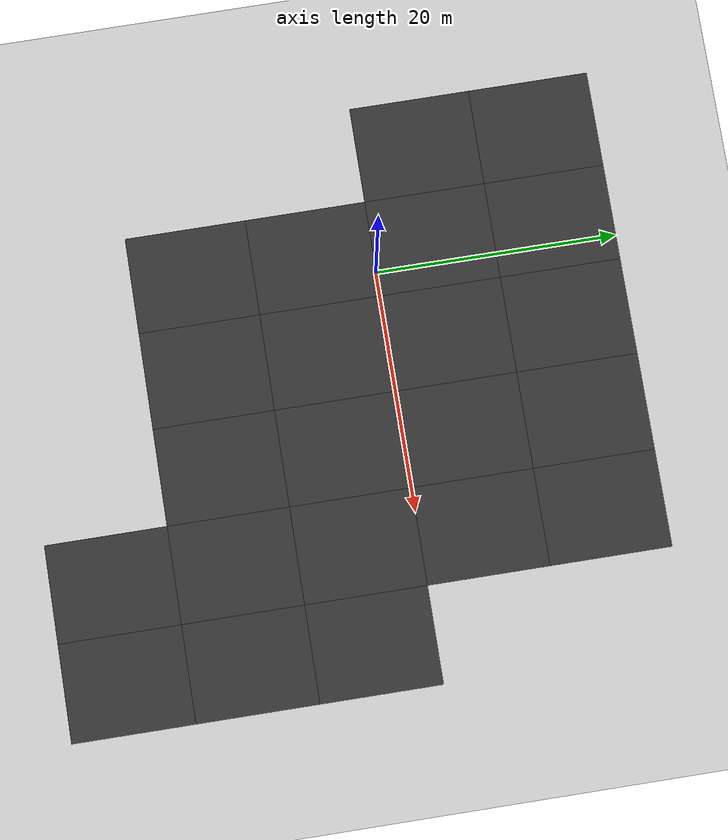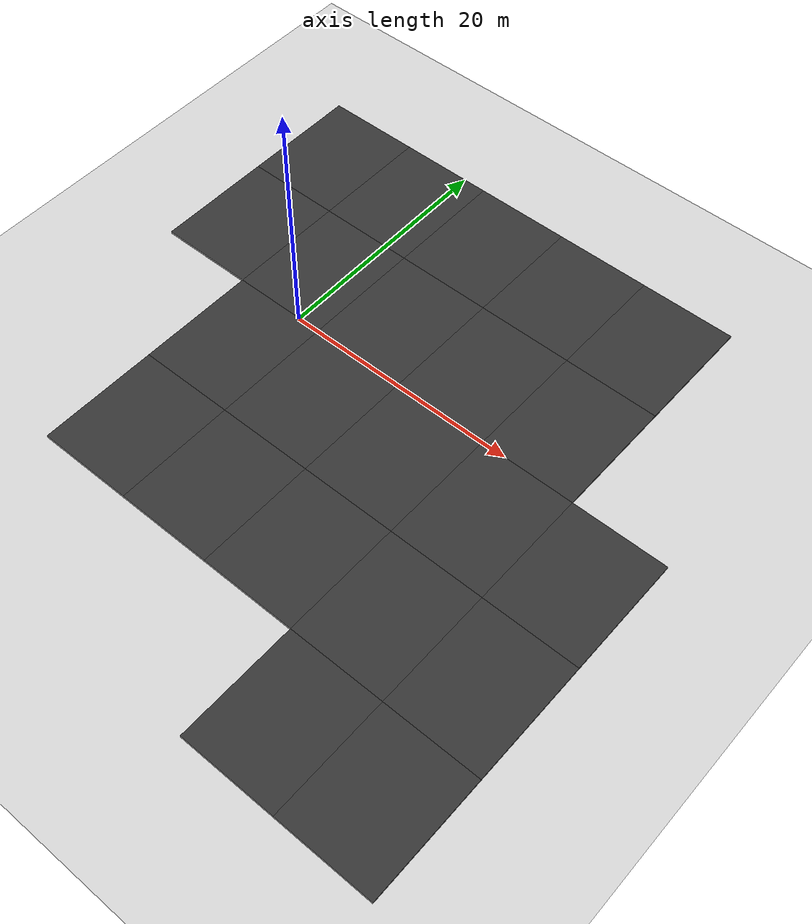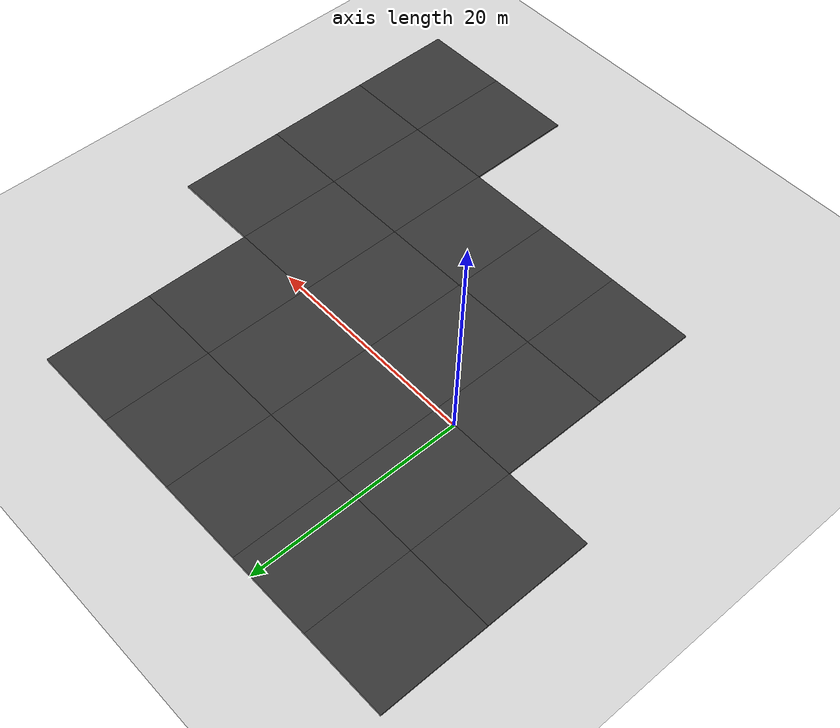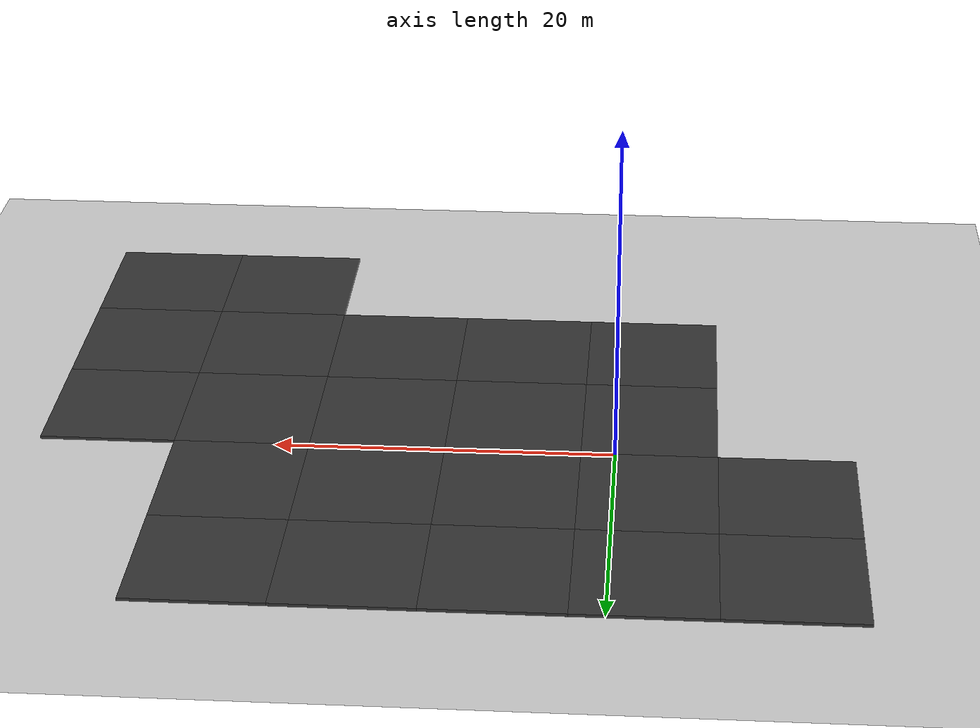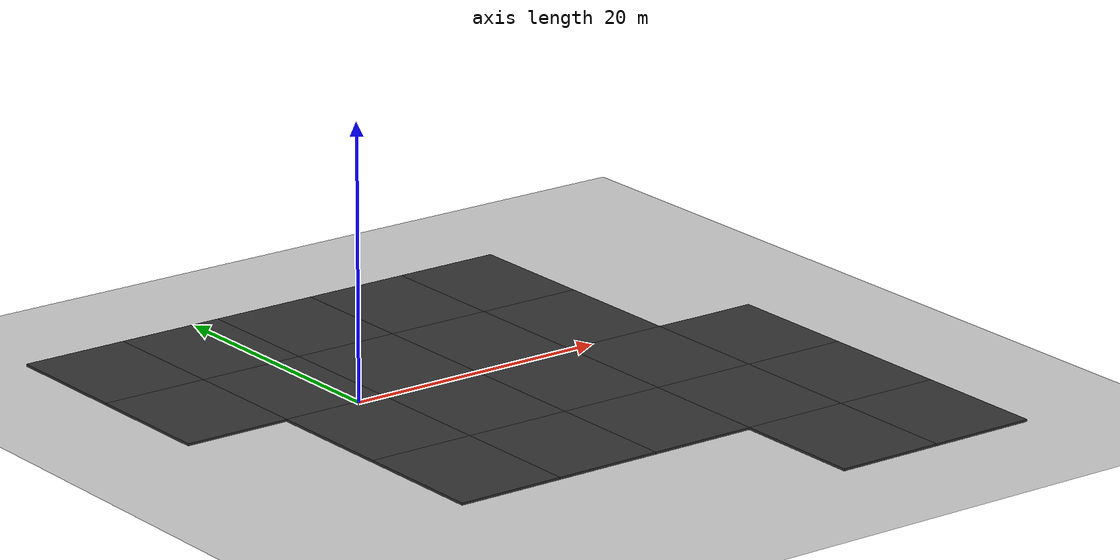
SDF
<sdf version="1.7">
 <world name="default">
  <model name="ground_plane">
   <static>1</static>
   <link name="link">
    <collision name="collision">
     <geometry><plane><normal>0 0 1</normal><size>100 100</size></plane></geometry>
     <surface>
      <contact><collide_bitmask>65535</collide_bitmask></contact>
      <friction><ode><mu>100</mu><mu2>50</mu2></ode></friction>
     </surface>
    </collision>
    <visual name="visual">
     <cast_shadows>0</cast_shadows>
     <geometry><plane><normal>0 0 1</normal><size>100 100</size></plane></geometry>
     <material>
      <script><uri>file://media/materials/scripts/gazebo.material</uri><name>Gazebo/Grey</name></script>
     </material>
    </visual>
   </link>
  </model>
  <model name="mud_box_11">
   <link name="link">
    <inertial>
     <mass>1</mass>
     <inertia><ixx>1</ixx><ixy>0</ixy><ixz>0</ixz><iyy>1</iyy><iyz>0</iyz><izz>1</izz></inertia>
    </inertial>
    <visual name="visual">
     <cast_shadows>0</cast_shadows>
     <geometry><box><size>8 10 0.2</size></box></geometry>
     <material>
      <script>
       <uri>model://mud_box/materials/scripts</uri>
       <uri>model://mud_box/materials/textures</uri>
       <name>vrc/mud</name>
      </script>
      <shader type="pixel"><normal_map>__default__</normal_map></shader>
      <ambient>0.2 0.2 0.2 1</ambient>
      <diffuse>0.2 0.2 0.2 1</diffuse>
      <specular>0.2 0.2 0.2 1</specular>
      <emissive>0 0 0 1</emissive>
     </material>
    </visual>
    <collision name="collision">
     <geometry><box><size>8 10 0.2</size></box></geometry>
     <surface>
      <friction>
       <ode><mu>1</mu><mu2>1</mu2><fdir1>0 0 0</fdir1><slip1>0</slip1><slip2>0</slip2></ode>
       <torsional>
        <coefficient>1</coefficient>
        <patch_radius>0</patch_radius>
        <surface_radius>0</surface_radius>
        <use_patch_radius>1</use_patch_radius>
        <ode><slip>0</slip></ode>
       </torsional>
      </friction>
      <bounce><restitution_coefficient>0</restitution_coefficient><threshold>1e+06</threshold></bounce>
      <contact>
       <collide_without_contact>0</collide_without_contact>
       <collide_without_contact_bitmask>1</collide_without_contact_bitmask>
       <collide_bitmask>1</collide_bitmask>
       <ode>
        <soft_cfm>0</soft_cfm>
        <soft_erp>0.2</soft_erp>
        <kp>1e+13</kp>
        <kd>1</kd>
        <max_vel>0.01</max_vel>
        <min_depth>0</min_depth>
       </ode>
       <bullet>
        <split_impulse>1</split_impulse>
        <split_impulse_penetration_threshold>-0.01</split_impulse_penetration_threshold>
        <soft_cfm>0</soft_cfm>
        <soft_erp>0.2</soft_erp>
        <kp>1e+13</kp>
        <kd>1</kd>
       </bullet>
      </contact>
     </surface>
    </collision>
   </link>
   <static>1</static>
   <pose>30 -25 0 0 -0 0</pose>
  </model>
  <model name="mud_box_12">
   <link name="link">
    <inertial>
     <mass>1</mass>
     <inertia><ixx>1</ixx><ixy>0</ixy><ixz>0</ixz><iyy>1</iyy><iyz>0</iyz><izz>1</izz></inertia>
    </inertial>
    <visual name="visual">
     <cast_shadows>0</cast_shadows>
     <geometry><box><size>8 10 0.2</size></box></geometry>
     <material>
      <script>
       <uri>model://mud_box/materials/scripts</uri>
       <uri>model://mud_box/materials/textures</uri>
       <name>vrc/mud</name>
      </script>
      <shader type="pixel"><normal_map>__default__</normal_map></shader>
      <ambient>0.2 0.2 0.2 1</ambient>
      <diffuse>0.2 0.2 0.2 1</diffuse>
      <specular>0.2 0.2 0.2 1</specular>
      <emissive>0 0 0 1</emissive>
     </material>
    </visual>
    <collision name="collision">
     <geometry><box><size>8 10 0.2</size></box></geometry>
     <surface>
      <friction>
       <ode><mu>1</mu><mu2>1</mu2><fdir1>0 0 0</fdir1><slip1>0</slip1><slip2>0</slip2></ode>
       <torsional>
        <coefficient>1</coefficient>
        <patch_radius>0</patch_radius>
        <surface_radius>0</surface_radius>
        <use_patch_radius>1</use_patch_radius>
        <ode><slip>0</slip></ode>
       </torsional>
      </friction>
      <bounce><restitution_coefficient>0</restitution_coefficient><threshold>1e+06</threshold></bounce>
      <contact>
       <collide_without_contact>0</collide_without_contact>
       <collide_without_contact_bitmask>1</collide_without_contact_bitmask>
       <collide_bitmask>1</collide_bitmask>
       <ode>
        <soft_cfm>0</soft_cfm>
        <soft_erp>0.2</soft_erp>
        <kp>1e+13</kp>
        <kd>1</kd>
        <max_vel>0.01</max_vel>
        <min_depth>0</min_depth>
       </ode>
       <bullet>
        <split_impulse>1</split_impulse>
        <split_impulse_penetration_threshold>-0.01</split_impulse_penetration_threshold>
        <soft_cfm>0</soft_cfm>
        <soft_erp>0.2</soft_erp>
        <kp>1e+13</kp>
        <kd>1</kd>
       </bullet>
      </contact>
     </surface>
    </collision>
   </link>
   <static>1</static>
   <pose>30 -15 0 0 -0 0</pose>
  </model>
  <model name="mud_box_13">
   <link name="link">
    <inertial>
     <mass>1</mass>
     <inertia><ixx>1</ixx><ixy>0</ixy><ixz>0</ixz><iyy>1</iyy><iyz>0</iyz><izz>1</izz></inertia>
    </inertial>
    <visual name="visual">
     <cast_shadows>0</cast_shadows>
     <geometry><box><size>8 10 0.2</size></box></geometry>
     <material>
      <script>
       <uri>model://mud_box/materials/scripts</uri>
       <uri>model://mud_box/materials/textures</uri>
       <name>vrc/mud</name>
      </script>
      <shader type="pixel"><normal_map>__default__</normal_map></shader>
      <ambient>0.2 0.2 0.2 1</ambient>
      <diffuse>0.2 0.2 0.2 1</diffuse>
      <specular>0.2 0.2 0.2 1</specular>
      <emissive>0 0 0 1</emissive>
     </material>
    </visual>
    <collision name="collision">
     <geometry><box><size>8 10 0.2</size></box></geometry>
     <surface>
      <friction>
       <ode><mu>1</mu><mu2>1</mu2><fdir1>0 0 0</fdir1><slip1>0</slip1><slip2>0</slip2></ode>
       <torsional>
        <coefficient>1</coefficient>
        <patch_radius>0</patch_radius>
        <surface_radius>0</surface_radius>
        <use_patch_radius>1</use_patch_radius>
        <ode><slip>0</slip></ode>
       </torsional>
      </friction>
      <bounce><restitution_coefficient>0</restitution_coefficient><threshold>1e+06</threshold></bounce>
      <contact>
       <collide_without_contact>0</collide_without_contact>
       <collide_without_contact_bitmask>1</collide_without_contact_bitmask>
       <collide_bitmask>1</collide_bitmask>
       <ode>
        <soft_cfm>0</soft_cfm>
        <soft_erp>0.2</soft_erp>
        <kp>1e+13</kp>
        <kd>1</kd>
        <max_vel>0.01</max_vel>
        <min_depth>0</min_depth>
       </ode>
       <bullet>
        <split_impulse>1</split_impulse>
        <split_impulse_penetration_threshold>-0.01</split_impulse_penetration_threshold>
        <soft_cfm>0</soft_cfm>
        <soft_erp>0.2</soft_erp>
        <kp>1e+13</kp>
        <kd>1</kd>
       </bullet>
      </contact>
     </surface>
    </collision>
   </link>
   <static>1</static>
   <pose>30 -5 0 0 -0 0</pose>
  </model>
  <model name="mud_box_14">
   <link name="link">
    <inertial>
     <mass>1</mass>
     <inertia><ixx>1</ixx><ixy>0</ixy><ixz>0</ixz><iyy>1</iyy><iyz>0</iyz><izz>1</izz></inertia>
    </inertial>
    <visual name="visual">
     <cast_shadows>0</cast_shadows>
     <geometry><box><size>8 10 0.2</size></box></geometry>
     <material>
      <script>
       <uri>model://mud_box/materials/scripts</uri>
       <uri>model://mud_box/materials/textures</uri>
       <name>vrc/mud</name>
      </script>
      <shader type="pixel"><normal_map>__default__</normal_map></shader>
      <ambient>0.2 0.2 0.2 1</ambient>
      <diffuse>0.2 0.2 0.2 1</diffuse>
      <specular>0.2 0.2 0.2 1</specular>
      <emissive>0 0 0 1</emissive>
     </material>
    </visual>
    <collision name="collision">
     <geometry><box><size>8 10 0.2</size></box></geometry>
     <surface>
      <friction>
       <ode><mu>1</mu><mu2>1</mu2><fdir1>0 0 0</fdir1><slip1>0</slip1><slip2>0</slip2></ode>
       <torsional>
        <coefficient>1</coefficient>
        <patch_radius>0</patch_radius>
        <surface_radius>0</surface_radius>
        <use_patch_radius>1</use_patch_radius>
        <ode><slip>0</slip></ode>
       </torsional>
      </friction>
      <bounce><restitution_coefficient>0</restitution_coefficient><threshold>1e+06</threshold></bounce>
      <contact>
       <collide_without_contact>0</collide_without_contact>
       <collide_without_contact_bitmask>1</collide_without_contact_bitmask>
       <collide_bitmask>1</collide_bitmask>
       <ode>
        <soft_cfm>0</soft_cfm>
        <soft_erp>0.2</soft_erp>
        <kp>1e+13</kp>
        <kd>1</kd>
        <max_vel>0.01</max_vel>
        <min_depth>0</min_depth>
       </ode>
       <bullet>
        <split_impulse>1</split_impulse>
        <split_impulse_penetration_threshold>-0.01</split_impulse_penetration_threshold>
        <soft_cfm>0</soft_cfm>
        <soft_erp>0.2</soft_erp>
        <kp>1e+13</kp>
        <kd>1</kd>
       </bullet>
      </contact>
     </surface>
    </collision>
   </link>
   <static>1</static>
   <pose>22 -5 0 0 -0 0</pose>
  </model>
  <model name="mud_box_15">
   <link name="link">
    <inertial>
     <mass>1</mass>
     <inertia><ixx>1</ixx><ixy>0</ixy><ixz>0</ixz><iyy>1</iyy><iyz>0</iyz><izz>1</izz></inertia>
    </inertial>
    <visual name="visual">
     <cast_shadows>0</cast_shadows>
     <geometry><box><size>8 10 0.2</size></box></geometry>
     <material>
      <script>
       <uri>model://mud_box/materials/scripts</uri>
       <uri>model://mud_box/materials/textures</uri>
       <name>vrc/mud</name>
      </script>
      <shader type="pixel"><normal_map>__default__</normal_map></shader>
      <ambient>0.2 0.2 0.2 1</ambient>
      <diffuse>0.2 0.2 0.2 1</diffuse>
      <specular>0.2 0.2 0.2 1</specular>
      <emissive>0 0 0 1</emissive>
     </material>
    </visual>
    <collision name="collision">
     <geometry><box><size>8 10 0.2</size></box></geometry>
     <surface>
      <friction>
       <ode><mu>1</mu><mu2>1</mu2><fdir1>0 0 0</fdir1><slip1>0</slip1><slip2>0</slip2></ode>
       <torsional>
        <coefficient>1</coefficient>
        <patch_radius>0</patch_radius>
        <surface_radius>0</surface_radius>
        <use_patch_radius>1</use_patch_radius>
        <ode><slip>0</slip></ode>
       </torsional>
      </friction>
      <bounce><restitution_coefficient>0</restitution_coefficient><threshold>1e+06</threshold></bounce>
      <contact>
       <collide_without_contact>0</collide_without_contact>
       <collide_without_contact_bitmask>1</collide_without_contact_bitmask>
       <collide_bitmask>1</collide_bitmask>
       <ode>
        <soft_cfm>0</soft_cfm>
        <soft_erp>0.2</soft_erp>
        <kp>1e+13</kp>
        <kd>1</kd>
        <max_vel>0.01</max_vel>
        <min_depth>0</min_depth>
       </ode>
       <bullet>
        <split_impulse>1</split_impulse>
        <split_impulse_penetration_threshold>-0.01</split_impulse_penetration_threshold>
        <soft_cfm>0</soft_cfm>
        <soft_erp>0.2</soft_erp>
        <kp>1e+13</kp>
        <kd>1</kd>
       </bullet>
      </contact>
     </surface>
    </collision>
   </link>
   <static>1</static>
   <pose>22 -15 0 0 -0 0</pose>
  </model>
  <model name="mud_box_16">
   <link name="link">
    <inertial>
     <mass>1</mass>
     <inertia><ixx>1</ixx><ixy>0</ixy><ixz>0</ixz><iyy>1</iyy><iyz>0</iyz><izz>1</izz></inertia>
    </inertial>
    <visual name="visual">
     <cast_shadows>0</cast_shadows>
     <geometry><box><size>8 10 0.2</size></box></geometry>
     <material>
      <script>
       <uri>model://mud_box/materials/scripts</uri>
       <uri>model://mud_box/materials/textures</uri>
       <name>vrc/mud</name>
      </script>
      <shader type="pixel"><normal_map>__default__</normal_map></shader>
      <ambient>0.2 0.2 0.2 1</ambient>
      <diffuse>0.2 0.2 0.2 1</diffuse>
      <specular>0.2 0.2 0.2 1</specular>
      <emissive>0 0 0 1</emissive>
     </material>
    </visual>
    <collision name="collision">
     <geometry><box><size>8 10 0.2</size></box></geometry>
     <surface>
      <friction>
       <ode><mu>1</mu><mu2>1</mu2><fdir1>0 0 0</fdir1><slip1>0</slip1><slip2>0</slip2></ode>
       <torsional>
        <coefficient>1</coefficient>
        <patch_radius>0</patch_radius>
        <surface_radius>0</surface_radius>
        <use_patch_radius>1</use_patch_radius>
        <ode><slip>0</slip></ode>
       </torsional>
      </friction>
      <bounce><restitution_coefficient>0</restitution_coefficient><threshold>1e+06</threshold></bounce>
      <contact>
       <collide_without_contact>0</collide_without_contact>
       <collide_without_contact_bitmask>1</collide_without_contact_bitmask>
       <collide_bitmask>1</collide_bitmask>
       <ode>
        <soft_cfm>0</soft_cfm>
        <soft_erp>0.2</soft_erp>
        <kp>1e+13</kp>
        <kd>1</kd>
        <max_vel>0.01</max_vel>
        <min_depth>0</min_depth>
       </ode>
       <bullet>
        <split_impulse>1</split_impulse>
        <split_impulse_penetration_threshold>-0.01</split_impulse_penetration_threshold>
        <soft_cfm>0</soft_cfm>
        <soft_erp>0.2</soft_erp>
        <kp>1e+13</kp>
        <kd>1</kd>
       </bullet>
      </contact>
     </surface>
    </collision>
   </link>
   <static>1</static>
   <pose>22 -25 0 0 -0 0</pose>
  </model>
  <model name="mud_box_22">
   <link name="link">
    <inertial>
     <mass>1</mass>
     <inertia><ixx>1</ixx><ixy>0</ixy><ixz>0</ixz><iyy>1</iyy><iyz>0</iyz><izz>1</izz></inertia>
    </inertial>
    <visual name="visual">
     <cast_shadows>0</cast_shadows>
     <geometry><box><size>8 10 0.2</size></box></geometry>
     <material>
      <script>
       <uri>model://mud_box/materials/scripts</uri>
       <uri>model://mud_box/materials/textures</uri>
       <name>vrc/mud</name>
      </script>
      <shader type="pixel"><normal_map>__default__</normal_map></shader>
      <ambient>0.2 0.2 0.2 1</ambient>
      <diffuse>0.2 0.2 0.2 1</diffuse>
      <specular>0.2 0.2 0.2 1</specular>
      <emissive>0 0 0 1</emissive>
     </material>
    </visual>
    <collision name="collision">
     <geometry><box><size>8 10 0.2</size></box></geometry>
     <surface>
      <friction>
       <ode><mu>1</mu><mu2>1</mu2><fdir1>0 0 0</fdir1><slip1>0</slip1><slip2>0</slip2></ode>
       <torsional>
        <coefficient>1</coefficient>
        <patch_radius>0</patch_radius>
        <surface_radius>0</surface_radius>
        <use_patch_radius>1</use_patch_radius>
        <ode><slip>0</slip></ode>
       </torsional>
      </friction>
      <bounce><restitution_coefficient>0</restitution_coefficient><threshold>1e+06</threshold></bounce>
      <contact>
       <collide_without_contact>0</collide_without_contact>
       <collide_without_contact_bitmask>1</collide_without_contact_bitmask>
       <collide_bitmask>1</collide_bitmask>
       <ode>
        <soft_cfm>0</soft_cfm>
        <soft_erp>0.2</soft_erp>
        <kp>1e+13</kp>
        <kd>1</kd>
        <max_vel>0.01</max_vel>
        <min_depth>0</min_depth>
       </ode>
       <bullet>
        <split_impulse>1</split_impulse>
        <split_impulse_penetration_threshold>-0.01</split_impulse_penetration_threshold>
        <soft_cfm>0</soft_cfm>
        <soft_erp>0.2</soft_erp>
        <kp>1e+13</kp>
        <kd>1</kd>
       </bullet>
      </contact>
     </surface>
    </collision>
   </link>
   <static>1</static>
   <pose>14 -15 0 0 -0 0</pose>
  </model>
  <model name="mud_box_23">
   <link name="link">
    <inertial>
     <mass>1</mass>
     <inertia><ixx>1</ixx><ixy>0</ixy><ixz>0</ixz><iyy>1</iyy><iyz>0</iyz><izz>1</izz></inertia>
    </inertial>
    <visual name="visual">
     <cast_shadows>0</cast_shadows>
     <geometry><box><size>8 10 0.2</size></box></geometry>
     <material>
      <script>
       <uri>model://mud_box/materials/scripts</uri>
       <uri>model://mud_box/materials/textures</uri>
       <name>vrc/mud</name>
      </script>
      <shader type="pixel"><normal_map>__default__</normal_map></shader>
      <ambient>0.2 0.2 0.2 1</ambient>
      <diffuse>0.2 0.2 0.2 1</diffuse>
      <specular>0.2 0.2 0.2 1</specular>
      <emissive>0 0 0 1</emissive>
     </material>
    </visual>
    <collision name="collision">
     <geometry><box><size>8 10 0.2</size></box></geometry>
     <surface>
      <friction>
       <ode><mu>1</mu><mu2>1</mu2><fdir1>0 0 0</fdir1><slip1>0</slip1><slip2>0</slip2></ode>
       <torsional>
        <coefficient>1</coefficient>
        <patch_radius>0</patch_radius>
        <surface_radius>0</surface_radius>
        <use_patch_radius>1</use_patch_radius>
        <ode><slip>0</slip></ode>
       </torsional>
      </friction>
      <bounce><restitution_coefficient>0</restitution_coefficient><threshold>1e+06</threshold></bounce>
      <contact>
       <collide_without_contact>0</collide_without_contact>
       <collide_without_contact_bitmask>1</collide_without_contact_bitmask>
       <collide_bitmask>1</collide_bitmask>
       <ode>
        <soft_cfm>0</soft_cfm>
        <soft_erp>0.2</soft_erp>
        <kp>1e+13</kp>
        <kd>1</kd>
        <max_vel>0.01</max_vel>
        <min_depth>0</min_depth>
       </ode>
       <bullet>
        <split_impulse>1</split_impulse>
        <split_impulse_penetration_threshold>-0.01</split_impulse_penetration_threshold>
        <soft_cfm>0</soft_cfm>
        <soft_erp>0.2</soft_erp>
        <kp>1e+13</kp>
        <kd>1</kd>
       </bullet>
      </contact>
     </surface>
    </collision>
   </link>
   <static>1</static>
   <pose>14 -5 0 0 -0 0</pose>
  </model>
  <model name="mud_box_24">
   <link name="link">
    <inertial>
     <mass>1</mass>
     <inertia><ixx>1</ixx><ixy>0</ixy><ixz>0</ixz><iyy>1</iyy><iyz>0</iyz><izz>1</izz></inertia>
    </inertial>
    <visual name="visual">
     <cast_shadows>0</cast_shadows>
     <geometry><box><size>8 10 0.2</size></box></geometry>
     <material>
      <script>
       <uri>model://mud_box/materials/scripts</uri>
       <uri>model://mud_box/materials/textures</uri>
       <name>vrc/mud</name>
      </script>
      <shader type="pixel"><normal_map>__default__</normal_map></shader>
      <ambient>0.2 0.2 0.2 1</ambient>
      <diffuse>0.2 0.2 0.2 1</diffuse>
      <specular>0.2 0.2 0.2 1</specular>
      <emissive>0 0 0 1</emissive>
     </material>
    </visual>
    <collision name="collision">
     <geometry><box><size>8 10 0.2</size></box></geometry>
     <surface>
      <friction>
       <ode><mu>1</mu><mu2>1</mu2><fdir1>0 0 0</fdir1><slip1>0</slip1><slip2>0</slip2></ode>
       <torsional>
        <coefficient>1</coefficient>
        <patch_radius>0</patch_radius>
        <surface_radius>0</surface_radius>
        <use_patch_radius>1</use_patch_radius>
        <ode><slip>0</slip></ode>
       </torsional>
      </friction>
      <bounce><restitution_coefficient>0</restitution_coefficient><threshold>1e+06</threshold></bounce>
      <contact>
       <collide_without_contact>0</collide_without_contact>
       <collide_without_contact_bitmask>1</collide_without_contact_bitmask>
       <collide_bitmask>1</collide_bitmask>
       <ode>
        <soft_cfm>0</soft_cfm>
        <soft_erp>0.2</soft_erp>
        <kp>1e+13</kp>
        <kd>1</kd>
        <max_vel>0.01</max_vel>
        <min_depth>0</min_depth>
       </ode>
       <bullet>
        <split_impulse>1</split_impulse>
        <split_impulse_penetration_threshold>-0.01</split_impulse_penetration_threshold>
        <soft_cfm>0</soft_cfm>
        <soft_erp>0.2</soft_erp>
        <kp>1e+13</kp>
        <kd>1</kd>
       </bullet>
      </contact>
     </surface>
    </collision>
   </link>
   <static>1</static>
   <pose>6 -5 0 0 -0 0</pose>
  </model>
  <model name="mud_box_25">
   <link name="link">
    <inertial>
     <mass>1</mass>
     <inertia><ixx>1</ixx><ixy>0</ixy><ixz>0</ixz><iyy>1</iyy><iyz>0</iyz><izz>1</izz></inertia>
    </inertial>
    <visual name="visual">
     <cast_shadows>0</cast_shadows>
     <geometry><box><size>8 10 0.2</size></box></geometry>
     <material>
      <script>
       <uri>model://mud_box/materials/scripts</uri>
       <uri>model://mud_box/materials/textures</uri>
       <name>vrc/mud</name>
      </script>
      <shader type="pixel"><normal_map>__default__</normal_map></shader>
      <ambient>0.2 0.2 0.2 1</ambient>
      <diffuse>0.2 0.2 0.2 1</diffuse>
      <specular>0.2 0.2 0.2 1</specular>
      <emissive>0 0 0 1</emissive>
     </material>
    </visual>
    <collision name="collision">
     <geometry><box><size>8 10 0.2</size></box></geometry>
     <surface>
      <friction>
       <ode><mu>1</mu><mu2>1</mu2><fdir1>0 0 0</fdir1><slip1>0</slip1><slip2>0</slip2></ode>
       <torsional>
        <coefficient>1</coefficient>
        <patch_radius>0</patch_radius>
        <surface_radius>0</surface_radius>
        <use_patch_radius>1</use_patch_radius>
        <ode><slip>0</slip></ode>
       </torsional>
      </friction>
      <bounce><restitution_coefficient>0</restitution_coefficient><threshold>1e+06</threshold></bounce>
      <contact>
       <collide_without_contact>0</collide_without_contact>
       <collide_without_contact_bitmask>1</collide_without_contact_bitmask>
       <collide_bitmask>1</collide_bitmask>
       <ode>
        <soft_cfm>0</soft_cfm>
        <soft_erp>0.2</soft_erp>
        <kp>1e+13</kp>
        <kd>1</kd>
        <max_vel>0.01</max_vel>
        <min_depth>0</min_depth>
       </ode>
       <bullet>
        <split_impulse>1</split_impulse>
        <split_impulse_penetration_threshold>-0.01</split_impulse_penetration_threshold>
        <soft_cfm>0</soft_cfm>
        <soft_erp>0.2</soft_erp>
        <kp>1e+13</kp>
        <kd>1</kd>
       </bullet>
      </contact>
     </surface>
    </collision>
   </link>
   <static>1</static>
   <pose>6 -15 0 0 -0 0</pose>
  </model>
  <model name="mud_box_32">
   <link name="link">
    <inertial>
     <mass>1</mass>
     <inertia><ixx>1</ixx><ixy>0</ixy><ixz>0</ixz><iyy>1</iyy><iyz>0</iyz><izz>1</izz></inertia>
    </inertial>
    <visual name="visual">
     <cast_shadows>0</cast_shadows>
     <geometry><box><size>8 10 0.2</size></box></geometry>
     <material>
      <script>
       <uri>model://mud_box/materials/scripts</uri>
       <uri>model://mud_box/materials/textures</uri>
       <name>vrc/mud</name>
      </script>
      <shader type="pixel"><normal_map>__default__</normal_map></shader>
      <ambient>0.2 0.2 0.2 1</ambient>
      <diffuse>0.2 0.2 0.2 1</diffuse>
      <specular>0.2 0.2 0.2 1</specular>
      <emissive>0 0 0 1</emissive>
     </material>
    </visual>
    <collision name="collision">
     <geometry><box><size>8 10 0.2</size></box></geometry>
     <surface>
      <friction>
       <ode><mu>1</mu><mu2>1</mu2><fdir1>0 0 0</fdir1><slip1>0</slip1><slip2>0</slip2></ode>
       <torsional>
        <coefficient>1</coefficient>
        <patch_radius>0</patch_radius>
        <surface_radius>0</surface_radius>
        <use_patch_radius>1</use_patch_radius>
        <ode><slip>0</slip></ode>
       </torsional>
      </friction>
      <bounce><restitution_coefficient>0</restitution_coefficient><threshold>1e+06</threshold></bounce>
      <contact>
       <collide_without_contact>0</collide_without_contact>
       <collide_without_contact_bitmask>1</collide_without_contact_bitmask>
       <collide_bitmask>1</collide_bitmask>
       <ode>
        <soft_cfm>0</soft_cfm>
        <soft_erp>0.2</soft_erp>
        <kp>1e+13</kp>
        <kd>1</kd>
        <max_vel>0.01</max_vel>
        <min_depth>0</min_depth>
       </ode>
       <bullet>
        <split_impulse>1</split_impulse>
        <split_impulse_penetration_threshold>-0.01</split_impulse_penetration_threshold>
        <soft_cfm>0</soft_cfm>
        <soft_erp>0.2</soft_erp>
        <kp>1e+13</kp>
        <kd>1</kd>
       </bullet>
      </contact>
     </surface>
    </collision>
   </link>
   <static>1</static>
   <pose>-2 -15 0 0 -0 0</pose>
  </model>
  <model name="mud_box_33">
   <link name="link">
    <inertial>
     <mass>1</mass>
     <inertia><ixx>1</ixx><ixy>0</ixy><ixz>0</ixz><iyy>1</iyy><iyz>0</iyz><izz>1</izz></inertia>
    </inertial>
    <visual name="visual">
     <cast_shadows>0</cast_shadows>
     <geometry><box><size>8 10 0.2</size></box></geometry>
     <material>
      <script>
       <uri>model://mud_box/materials/scripts</uri>
       <uri>model://mud_box/materials/textures</uri>
       <name>vrc/mud</name>
      </script>
      <shader type="pixel"><normal_map>__default__</normal_map></shader>
      <ambient>0.2 0.2 0.2 1</ambient>
      <diffuse>0.2 0.2 0.2 1</diffuse>
      <specular>0.2 0.2 0.2 1</specular>
      <emissive>0 0 0 1</emissive>
     </material>
    </visual>
    <collision name="collision">
     <geometry><box><size>8 10 0.2</size></box></geometry>
     <surface>
      <friction>
       <ode><mu>1</mu><mu2>1</mu2><fdir1>0 0 0</fdir1><slip1>0</slip1><slip2>0</slip2></ode>
       <torsional>
        <coefficient>1</coefficient>
        <patch_radius>0</patch_radius>
        <surface_radius>0</surface_radius>
        <use_patch_radius>1</use_patch_radius>
        <ode><slip>0</slip></ode>
       </torsional>
      </friction>
      <bounce><restitution_coefficient>0</restitution_coefficient><threshold>1e+06</threshold></bounce>
      <contact>
       <collide_without_contact>0</collide_without_contact>
       <collide_without_contact_bitmask>1</collide_without_contact_bitmask>
       <collide_bitmask>1</collide_bitmask>
       <ode>
        <soft_cfm>0</soft_cfm>
        <soft_erp>0.2</soft_erp>
        <kp>1e+13</kp>
        <kd>1</kd>
        <max_vel>0.01</max_vel>
        <min_depth>0</min_depth>
       </ode>
       <bullet>
        <split_impulse>1</split_impulse>
        <split_impulse_penetration_threshold>-0.01</split_impulse_penetration_threshold>
        <soft_cfm>0</soft_cfm>
        <soft_erp>0.2</soft_erp>
        <kp>1e+13</kp>
        <kd>1</kd>
       </bullet>
      </contact>
     </surface>
    </collision>
   </link>
   <static>1</static>
   <pose>-2 -5 0 0 -0 0</pose>
  </model>
  <model name="mud_box_89">
   <link name="link">
    <inertial>
     <mass>1</mass>
     <inertia><ixx>1</ixx><ixy>0</ixy><ixz>0</ixz><iyy>1</iyy><iyz>0</iyz><izz>1</izz></inertia>
    </inertial>
    <visual name="visual">
     <cast_shadows>0</cast_shadows>
     <geometry><box><size>8 10 0.2</size></box></geometry>
     <material>
      <script>
       <uri>model://mud_box/materials/scripts</uri>
       <uri>model://mud_box/materials/textures</uri>
       <name>vrc/mud</name>
      </script>
      <shader type="pixel"><normal_map>__default__</normal_map></shader>
      <ambient>0.2 0.2 0.2 1</ambient>
      <diffuse>0.2 0.2 0.2 1</diffuse>
      <specular>0.2 0.2 0.2 1</specular>
      <emissive>0 0 0 1</emissive>
     </material>
    </visual>
    <collision name="collision">
     <geometry><box><size>8 10 0.2</size></box></geometry>
     <surface>
      <friction>
       <ode><mu>1</mu><mu2>1</mu2><fdir1>0 0 0</fdir1><slip1>0</slip1><slip2>0</slip2></ode>
       <torsional>
        <coefficient>1</coefficient>
        <patch_radius>0</patch_radius>
        <surface_radius>0</surface_radius>
        <use_patch_radius>1</use_patch_radius>
        <ode><slip>0</slip></ode>
       </torsional>
      </friction>
      <bounce><restitution_coefficient>0</restitution_coefficient><threshold>1e+06</threshold></bounce>
      <contact>
       <collide_without_contact>0</collide_without_contact>
       <collide_without_contact_bitmask>1</collide_without_contact_bitmask>
       <collide_bitmask>1</collide_bitmask>
       <ode>
        <soft_cfm>0</soft_cfm>
        <soft_erp>0.2</soft_erp>
        <kp>1e+13</kp>
        <kd>1</kd>
        <max_vel>0.01</max_vel>
        <min_depth>0</min_depth>
       </ode>
       <bullet>
        <split_impulse>1</split_impulse>
        <split_impulse_penetration_threshold>-0.01</split_impulse_penetration_threshold>
        <soft_cfm>0</soft_cfm>
        <soft_erp>0.2</soft_erp>
        <kp>1e+13</kp>
        <kd>1</kd>
       </bullet>
      </contact>
     </surface>
    </collision>
   </link>
   <static>1</static>
   <pose>-10 5 0 0 -0 0</pose>
  </model>
  <model name="mud_box_90">
   <link name="link">
    <inertial>
     <mass>1</mass>
     <inertia><ixx>1</ixx><ixy>0</ixy><ixz>0</ixz><iyy>1</iyy><iyz>0</iyz><izz>1</izz></inertia>
    </inertial>
    <visual name="visual">
     <cast_shadows>0</cast_shadows>
     <geometry><box><size>8 10 0.2</size></box></geometry>
     <material>
      <script>
       <uri>model://mud_box/materials/scripts</uri>
       <uri>model://mud_box/materials/textures</uri>
       <name>vrc/mud</name>
      </script>
      <shader type="pixel"><normal_map>__default__</normal_map></shader>
      <ambient>0.2 0.2 0.2 1</ambient>
      <diffuse>0.2 0.2 0.2 1</diffuse>
      <specular>0.2 0.2 0.2 1</specular>
      <emissive>0 0 0 1</emissive>
     </material>
    </visual>
    <collision name="collision">
     <geometry><box><size>8 10 0.2</size></box></geometry>
     <surface>
      <friction>
       <ode><mu>1</mu><mu2>1</mu2><fdir1>0 0 0</fdir1><slip1>0</slip1><slip2>0</slip2></ode>
       <torsional>
        <coefficient>1</coefficient>
        <patch_radius>0</patch_radius>
        <surface_radius>0</surface_radius>
        <use_patch_radius>1</use_patch_radius>
        <ode><slip>0</slip></ode>
       </torsional>
      </friction>
      <bounce><restitution_coefficient>0</restitution_coefficient><threshold>1e+06</threshold></bounce>
      <contact>
       <collide_without_contact>0</collide_without_contact>
       <collide_without_contact_bitmask>1</collide_without_contact_bitmask>
       <collide_bitmask>1</collide_bitmask>
       <ode>
        <soft_cfm>0</soft_cfm>
        <soft_erp>0.2</soft_erp>
        <kp>1e+13</kp>
        <kd>1</kd>
        <max_vel>0.01</max_vel>
        <min_depth>0</min_depth>
       </ode>
       <bullet>
        <split_impulse>1</split_impulse>
        <split_impulse_penetration_threshold>-0.01</split_impulse_penetration_threshold>
        <soft_cfm>0</soft_cfm>
        <soft_erp>0.2</soft_erp>
        <kp>1e+13</kp>
        <kd>1</kd>
       </bullet>
      </contact>
     </surface>
    </collision>
   </link>
   <static>1</static>
   <pose>-2 5 0 0 -0 0</pose>
  </model>
  <model name="mud_box_91">
   <link name="link">
    <inertial>
     <mass>1</mass>
     <inertia><ixx>1</ixx><ixy>0</ixy><ixz>0</ixz><iyy>1</iyy><iyz>0</iyz><izz>1</izz></inertia>
    </inertial>
    <visual name="visual">
     <cast_shadows>0</cast_shadows>
     <geometry><box><size>8 10 0.2</size></box></geometry>
     <material>
      <script>
       <uri>model://mud_box/materials/scripts</uri>
       <uri>model://mud_box/materials/textures</uri>
       <name>vrc/mud</name>
      </script>
      <shader type="pixel"><normal_map>__default__</normal_map></shader>
      <ambient>0.2 0.2 0.2 1</ambient>
      <diffuse>0.2 0.2 0.2 1</diffuse>
      <specular>0.2 0.2 0.2 1</specular>
      <emissive>0 0 0 1</emissive>
     </material>
    </visual>
    <collision name="collision">
     <geometry><box><size>8 10 0.2</size></box></geometry>
     <surface>
      <friction>
       <ode><mu>1</mu><mu2>1</mu2><fdir1>0 0 0</fdir1><slip1>0</slip1><slip2>0</slip2></ode>
       <torsional>
        <coefficient>1</coefficient>
        <patch_radius>0</patch_radius>
        <surface_radius>0</surface_radius>
        <use_patch_radius>1</use_patch_radius>
        <ode><slip>0</slip></ode>
       </torsional>
      </friction>
      <bounce><restitution_coefficient>0</restitution_coefficient><threshold>1e+06</threshold></bounce>
      <contact>
       <collide_without_contact>0</collide_without_contact>
       <collide_without_contact_bitmask>1</collide_without_contact_bitmask>
       <collide_bitmask>1</collide_bitmask>
       <ode>
        <soft_cfm>0</soft_cfm>
        <soft_erp>0.2</soft_erp>
        <kp>1e+13</kp>
        <kd>1</kd>
        <max_vel>0.01</max_vel>
        <min_depth>0</min_depth>
       </ode>
       <bullet>
        <split_impulse>1</split_impulse>
        <split_impulse_penetration_threshold>-0.01</split_impulse_penetration_threshold>
        <soft_cfm>0</soft_cfm>
        <soft_erp>0.2</soft_erp>
        <kp>1e+13</kp>
        <kd>1</kd>
       </bullet>
      </contact>
     </surface>
    </collision>
   </link>
   <static>1</static>
   <pose>6 5 0 0 -0 0</pose>
  </model>
  <model name="mud_box_92">
   <link name="link">
    <inertial>
     <mass>1</mass>
     <inertia><ixx>1</ixx><ixy>0</ixy><ixz>0</ixz><iyy>1</iyy><iyz>0</iyz><izz>1</izz></inertia>
    </inertial>
    <visual name="visual">
     <cast_shadows>0</cast_shadows>
     <geometry><box><size>8 10 0.2</size></box></geometry>
     <material>
      <script>
       <uri>model://mud_box/materials/scripts</uri>
       <uri>model://mud_box/materials/textures</uri>
       <name>vrc/mud</name>
      </script>
      <shader type="pixel"><normal_map>__default__</normal_map></shader>
      <ambient>0.2 0.2 0.2 1</ambient>
      <diffuse>0.2 0.2 0.2 1</diffuse>
      <specular>0.2 0.2 0.2 1</specular>
      <emissive>0 0 0 1</emissive>
     </material>
    </visual>
    <collision name="collision">
     <geometry><box><size>8 10 0.2</size></box></geometry>
     <surface>
      <friction>
       <ode><mu>1</mu><mu2>1</mu2><fdir1>0 0 0</fdir1><slip1>0</slip1><slip2>0</slip2></ode>
       <torsional>
        <coefficient>1</coefficient>
        <patch_radius>0</patch_radius>
        <surface_radius>0</surface_radius>
        <use_patch_radius>1</use_patch_radius>
        <ode><slip>0</slip></ode>
       </torsional>
      </friction>
      <bounce><restitution_coefficient>0</restitution_coefficient><threshold>1e+06</threshold></bounce>
      <contact>
       <collide_without_contact>0</collide_without_contact>
       <collide_without_contact_bitmask>1</collide_without_contact_bitmask>
       <collide_bitmask>1</collide_bitmask>
       <ode>
        <soft_cfm>0</soft_cfm>
        <soft_erp>0.2</soft_erp>
        <kp>1e+13</kp>
        <kd>1</kd>
        <max_vel>0.01</max_vel>
        <min_depth>0</min_depth>
       </ode>
       <bullet>
        <split_impulse>1</split_impulse>
        <split_impulse_penetration_threshold>-0.01</split_impulse_penetration_threshold>
        <soft_cfm>0</soft_cfm>
        <soft_erp>0.2</soft_erp>
        <kp>1e+13</kp>
        <kd>1</kd>
       </bullet>
      </contact>
     </surface>
    </collision>
   </link>
   <static>1</static>
   <pose>14 5 0 0 -0 0</pose>
  </model>
  <model name="mud_box_93">
   <link name="link">
    <inertial>
     <mass>1</mass>
     <inertia><ixx>1</ixx><ixy>0</ixy><ixz>0</ixz><iyy>1</iyy><iyz>0</iyz><izz>1</izz></inertia>
    </inertial>
    <visual name="visual">
     <cast_shadows>0</cast_shadows>
     <geometry><box><size>8 10 0.2</size></box></geometry>
     <material>
      <script>
       <uri>model://mud_box/materials/scripts</uri>
       <uri>model://mud_box/materials/textures</uri>
       <name>vrc/mud</name>
      </script>
      <shader type="pixel"><normal_map>__default__</normal_map></shader>
      <ambient>0.2 0.2 0.2 1</ambient>
      <diffuse>0.2 0.2 0.2 1</diffuse>
      <specular>0.2 0.2 0.2 1</specular>
      <emissive>0 0 0 1</emissive>
     </material>
    </visual>
    <collision name="collision">
     <geometry><box><size>8 10 0.2</size></box></geometry>
     <surface>
      <friction>
       <ode><mu>1</mu><mu2>1</mu2><fdir1>0 0 0</fdir1><slip1>0</slip1><slip2>0</slip2></ode>
       <torsional>
        <coefficient>1</coefficient>
        <patch_radius>0</patch_radius>
        <surface_radius>0</surface_radius>
        <use_patch_radius>1</use_patch_radius>
        <ode><slip>0</slip></ode>
       </torsional>
      </friction>
      <bounce><restitution_coefficient>0</restitution_coefficient><threshold>1e+06</threshold></bounce>
      <contact>
       <collide_without_contact>0</collide_without_contact>
       <collide_without_contact_bitmask>1</collide_without_contact_bitmask>
       <collide_bitmask>1</collide_bitmask>
       <ode>
        <soft_cfm>0</soft_cfm>
        <soft_erp>0.2</soft_erp>
        <kp>1e+13</kp>
        <kd>1</kd>
        <max_vel>0.01</max_vel>
        <min_depth>0</min_depth>
       </ode>
       <bullet>
        <split_impulse>1</split_impulse>
        <split_impulse_penetration_threshold>-0.01</split_impulse_penetration_threshold>
        <soft_cfm>0</soft_cfm>
        <soft_erp>0.2</soft_erp>
        <kp>1e+13</kp>
        <kd>1</kd>
       </bullet>
      </contact>
     </surface>
    </collision>
   </link>
   <static>1</static>
   <pose>22 5 0 0 -0 0</pose>
  </model>
  <model name="mud_box_142">
   <link name="link">
    <inertial>
     <mass>1</mass>
     <inertia><ixx>1</ixx><ixy>0</ixy><ixz>0</ixz><iyy>1</iyy><iyz>0</iyz><izz>1</izz></inertia>
    </inertial>
    <visual name="visual">
     <cast_shadows>0</cast_shadows>
     <geometry><box><size>8 10 0.2</size></box></geometry>
     <material>
      <script>
       <uri>model://mud_box/materials/scripts</uri>
       <uri>model://mud_box/materials/textures</uri>
       <name>vrc/mud</name>
      </script>
      <shader type="pixel"><normal_map>__default__</normal_map></shader>
      <ambient>0.2 0.2 0.2 1</ambient>
      <diffuse>0.2 0.2 0.2 1</diffuse>
      <specular>0.2 0.2 0.2 1</specular>
      <emissive>0 0 0 1</emissive>
     </material>
    </visual>
    <collision name="collision">
     <geometry><box><size>8 10 0.2</size></box></geometry>
     <surface>
      <friction>
       <ode><mu>1</mu><mu2>1</mu2><fdir1>0 0 0</fdir1><slip1>0</slip1><slip2>0</slip2></ode>
       <torsional>
        <coefficient>1</coefficient>
        <patch_radius>0</patch_radius>
        <surface_radius>0</surface_radius>
        <use_patch_radius>1</use_patch_radius>
        <ode><slip>0</slip></ode>
       </torsional>
      </friction>
      <bounce><restitution_coefficient>0</restitution_coefficient><threshold>1e+06</threshold></bounce>
      <contact>
       <collide_without_contact>0</collide_without_contact>
       <collide_without_contact_bitmask>1</collide_without_contact_bitmask>
       <collide_bitmask>1</collide_bitmask>
       <ode>
        <soft_cfm>0</soft_cfm>
        <soft_erp>0.2</soft_erp>
        <kp>1e+13</kp>
        <kd>1</kd>
        <max_vel>0.01</max_vel>
        <min_depth>0</min_depth>
       </ode>
       <bullet>
        <split_impulse>1</split_impulse>
        <split_impulse_penetration_threshold>-0.01</split_impulse_penetration_threshold>
        <soft_cfm>0</soft_cfm>
        <soft_erp>0.2</soft_erp>
        <kp>1e+13</kp>
        <kd>1</kd>
       </bullet>
      </contact>
     </surface>
    </collision>
   </link>
   <static>1</static>
   <pose>-10 15 0 0 -0 0</pose>
  </model>
  <model name="mud_box_143">
   <link name="link">
    <inertial>
     <mass>1</mass>
     <inertia><ixx>1</ixx><ixy>0</ixy><ixz>0</ixz><iyy>1</iyy><iyz>0</iyz><izz>1</izz></inertia>
    </inertial>
    <visual name="visual">
     <cast_shadows>0</cast_shadows>
     <geometry><box><size>8 10 0.2</size></box></geometry>
     <material>
      <script>
       <uri>model://mud_box/materials/scripts</uri>
       <uri>model://mud_box/materials/textures</uri>
       <name>vrc/mud</name>
      </script>
      <shader type="pixel"><normal_map>__default__</normal_map></shader>
      <ambient>0.2 0.2 0.2 1</ambient>
      <diffuse>0.2 0.2 0.2 1</diffuse>
      <specular>0.2 0.2 0.2 1</specular>
      <emissive>0 0 0 1</emissive>
     </material>
    </visual>
    <collision name="collision">
     <geometry><box><size>8 10 0.2</size></box></geometry>
     <surface>
      <friction>
       <ode><mu>1</mu><mu2>1</mu2><fdir1>0 0 0</fdir1><slip1>0</slip1><slip2>0</slip2></ode>
       <torsional>
        <coefficient>1</coefficient>
        <patch_radius>0</patch_radius>
        <surface_radius>0</surface_radius>
        <use_patch_radius>1</use_patch_radius>
        <ode><slip>0</slip></ode>
       </torsional>
      </friction>
      <bounce><restitution_coefficient>0</restitution_coefficient><threshold>1e+06</threshold></bounce>
      <contact>
       <collide_without_contact>0</collide_without_contact>
       <collide_without_contact_bitmask>1</collide_without_contact_bitmask>
       <collide_bitmask>1</collide_bitmask>
       <ode>
        <soft_cfm>0</soft_cfm>
        <soft_erp>0.2</soft_erp>
        <kp>1e+13</kp>
        <kd>1</kd>
        <max_vel>0.01</max_vel>
        <min_depth>0</min_depth>
       </ode>
       <bullet>
        <split_impulse>1</split_impulse>
        <split_impulse_penetration_threshold>-0.01</split_impulse_penetration_threshold>
        <soft_cfm>0</soft_cfm>
        <soft_erp>0.2</soft_erp>
        <kp>1e+13</kp>
        <kd>1</kd>
       </bullet>
      </contact>
     </surface>
    </collision>
   </link>
   <static>1</static>
   <pose>-2 15 0 0 -0 0</pose>
  </model>
  <model name="mud_box_144">
   <link name="link">
    <inertial>
     <mass>1</mass>
     <inertia><ixx>1</ixx><ixy>0</ixy><ixz>0</ixz><iyy>1</iyy><iyz>0</iyz><izz>1</izz></inertia>
    </inertial>
    <visual name="visual">
     <cast_shadows>0</cast_shadows>
     <geometry><box><size>8 10 0.2</size></box></geometry>
     <material>
      <script>
       <uri>model://mud_box/materials/scripts</uri>
       <uri>model://mud_box/materials/textures</uri>
       <name>vrc/mud</name>
      </script>
      <shader type="pixel"><normal_map>__default__</normal_map></shader>
      <ambient>0.2 0.2 0.2 1</ambient>
      <diffuse>0.2 0.2 0.2 1</diffuse>
      <specular>0.2 0.2 0.2 1</specular>
      <emissive>0 0 0 1</emissive>
     </material>
    </visual>
    <collision name="collision">
     <geometry><box><size>8 10 0.2</size></box></geometry>
     <surface>
      <friction>
       <ode><mu>1</mu><mu2>1</mu2><fdir1>0 0 0</fdir1><slip1>0</slip1><slip2>0</slip2></ode>
       <torsional>
        <coefficient>1</coefficient>
        <patch_radius>0</patch_radius>
        <surface_radius>0</surface_radius>
        <use_patch_radius>1</use_patch_radius>
        <ode><slip>0</slip></ode>
       </torsional>
      </friction>
      <bounce><restitution_coefficient>0</restitution_coefficient><threshold>1e+06</threshold></bounce>
      <contact>
       <collide_without_contact>0</collide_without_contact>
       <collide_without_contact_bitmask>1</collide_without_contact_bitmask>
       <collide_bitmask>1</collide_bitmask>
       <ode>
        <soft_cfm>0</soft_cfm>
        <soft_erp>0.2</soft_erp>
        <kp>1e+13</kp>
        <kd>1</kd>
        <max_vel>0.01</max_vel>
        <min_depth>0</min_depth>
       </ode>
       <bullet>
        <split_impulse>1</split_impulse>
        <split_impulse_penetration_threshold>-0.01</split_impulse_penetration_threshold>
        <soft_cfm>0</soft_cfm>
        <soft_erp>0.2</soft_erp>
        <kp>1e+13</kp>
        <kd>1</kd>
       </bullet>
      </contact>
     </surface>
    </collision>
   </link>
   <static>1</static>
   <pose>6 15 0 0 -0 0</pose>
  </model>
  <model name="mud_box_145">
   <link name="link">
    <inertial>
     <mass>1</mass>
     <inertia><ixx>1</ixx><ixy>0</ixy><ixz>0</ixz><iyy>1</iyy><iyz>0</iyz><izz>1</izz></inertia>
    </inertial>
    <visual name="visual">
     <cast_shadows>0</cast_shadows>
     <geometry><box><size>8 10 0.2</size></box></geometry>
     <material>
      <script>
       <uri>model://mud_box/materials/scripts</uri>
       <uri>model://mud_box/materials/textures</uri>
       <name>vrc/mud</name>
      </script>
      <shader type="pixel"><normal_map>__default__</normal_map></shader>
      <ambient>0.2 0.2 0.2 1</ambient>
      <diffuse>0.2 0.2 0.2 1</diffuse>
      <specular>0.2 0.2 0.2 1</specular>
      <emissive>0 0 0 1</emissive>
     </material>
    </visual>
    <collision name="collision">
     <geometry><box><size>8 10 0.2</size></box></geometry>
     <surface>
      <friction>
       <ode><mu>1</mu><mu2>1</mu2><fdir1>0 0 0</fdir1><slip1>0</slip1><slip2>0</slip2></ode>
       <torsional>
        <coefficient>1</coefficient>
        <patch_radius>0</patch_radius>
        <surface_radius>0</surface_radius>
        <use_patch_radius>1</use_patch_radius>
        <ode><slip>0</slip></ode>
       </torsional>
      </friction>
      <bounce><restitution_coefficient>0</restitution_coefficient><threshold>1e+06</threshold></bounce>
      <contact>
       <collide_without_contact>0</collide_without_contact>
       <collide_without_contact_bitmask>1</collide_without_contact_bitmask>
       <collide_bitmask>1</collide_bitmask>
       <ode>
        <soft_cfm>0</soft_cfm>
        <soft_erp>0.2</soft_erp>
        <kp>1e+13</kp>
        <kd>1</kd>
        <max_vel>0.01</max_vel>
        <min_depth>0</min_depth>
       </ode>
       <bullet>
        <split_impulse>1</split_impulse>
        <split_impulse_penetration_threshold>-0.01</split_impulse_penetration_threshold>
        <soft_cfm>0</soft_cfm>
        <soft_erp>0.2</soft_erp>
        <kp>1e+13</kp>
        <kd>1</kd>
       </bullet>
      </contact>
     </surface>
    </collision>
   </link>
   <static>1</static>
   <pose>14 15 0 0 -0 0</pose>
  </model>
  <model name="mud_box_146">
   <link name="link">
    <inertial>
     <mass>1</mass>
     <inertia><ixx>1</ixx><ixy>0</ixy><ixz>0</ixz><iyy>1</iyy><iyz>0</iyz><izz>1</izz></inertia>
    </inertial>
    <visual name="visual">
     <cast_shadows>0</cast_shadows>
     <geometry><box><size>8 10 0.2</size></box></geometry>
     <material>
      <script>
       <uri>model://mud_box/materials/scripts</uri>
       <uri>model://mud_box/materials/textures</uri>
       <name>vrc/mud</name>
      </script>
      <shader type="pixel"><normal_map>__default__</normal_map></shader>
      <ambient>0.2 0.2 0.2 1</ambient>
      <diffuse>0.2 0.2 0.2 1</diffuse>
      <specular>0.2 0.2 0.2 1</specular>
      <emissive>0 0 0 1</emissive>
     </material>
    </visual>
    <collision name="collision">
     <geometry><box><size>8 10 0.2</size></box></geometry>
     <surface>
      <friction>
       <ode><mu>1</mu><mu2>1</mu2><fdir1>0 0 0</fdir1><slip1>0</slip1><slip2>0</slip2></ode>
       <torsional>
        <coefficient>1</coefficient>
        <patch_radius>0</patch_radius>
        <surface_radius>0</surface_radius>
        <use_patch_radius>1</use_patch_radius>
        <ode><slip>0</slip></ode>
       </torsional>
      </friction>
      <bounce><restitution_coefficient>0</restitution_coefficient><threshold>1e+06</threshold></bounce>
      <contact>
       <collide_without_contact>0</collide_without_contact>
       <collide_without_contact_bitmask>1</collide_without_contact_bitmask>
       <collide_bitmask>1</collide_bitmask>
       <ode>
        <soft_cfm>0</soft_cfm>
        <soft_erp>0.2</soft_erp>
        <kp>1e+13</kp>
        <kd>1</kd>
        <max_vel>0.01</max_vel>
        <min_depth>0</min_depth>
       </ode>
       <bullet>
        <split_impulse>1</split_impulse>
        <split_impulse_penetration_threshold>-0.01</split_impulse_penetration_threshold>
        <soft_cfm>0</soft_cfm>
        <soft_erp>0.2</soft_erp>
        <kp>1e+13</kp>
        <kd>1</kd>
       </bullet>
      </contact>
     </surface>
    </collision>
   </link>
   <static>1</static>
   <pose>22 15 0 0 -0 0</pose>
  </model>
 </world>
</sdf>
